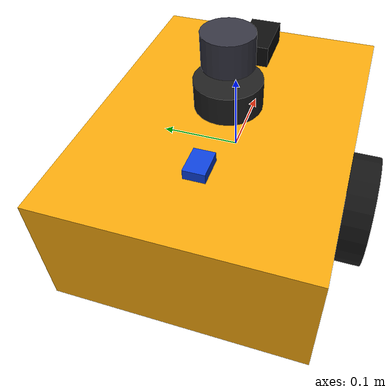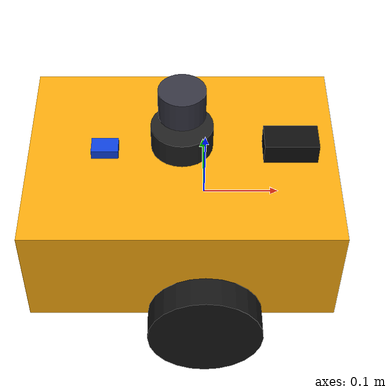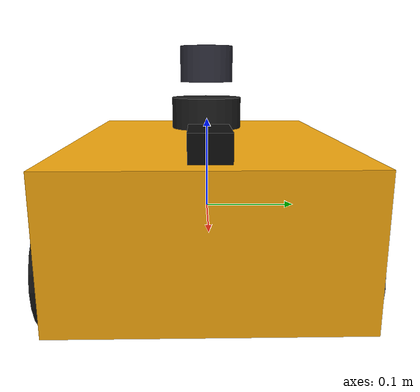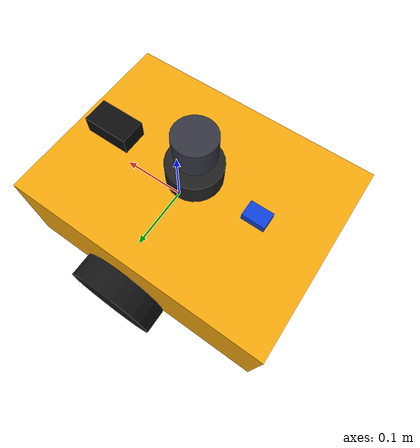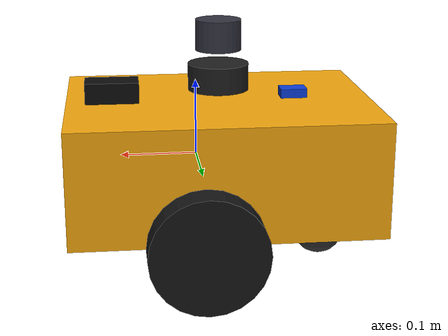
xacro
<?xml version="1.0"?>
<robot name="construction_rover" xmlns:xacro="http://www.ros.org/wiki/xacro">

  <xacro:property name="base_length" value="0.40"/>
  <xacro:property name="base_width"  value="0.30"/>
  <xacro:property name="base_height" value="0.15"/>
  <xacro:property name="base_mass"   value="5.0"/>
  <xacro:property name="wheel_radius" value="0.075"/>
  <xacro:property name="wheel_width"  value="0.04"/>
  <xacro:property name="wheel_mass"   value="0.5"/>
  <xacro:property name="wheel_y"      value="${base_width/2 + wheel_width/2}"/>
  <xacro:property name="wheel_z"      value="-0.075"/>
  <xacro:property name="caster_radius" value="0.035"/>
  <xacro:property name="caster_mass"   value="0.15"/>
  <xacro:property name="ground_z"      value="${wheel_z - wheel_radius}"/>
  <xacro:property name="caster_z"      value="${ground_z + caster_radius}"/>

  <xacro:property name="chassis_x"     value="-0.03"/>
  <xacro:property name="caster_x"      value="${chassis_x - 0.14}"/>

  <link name="base_link">
    <visual>
      <origin xyz="${chassis_x} 0 0" rpy="0 0 0"/>
      <geometry><box size="${base_length} ${base_width} ${base_height}"/></geometry>
      <material name="safety_yellow"><color rgba="0.95 0.65 0.05 1.0"/></material>
    </visual>
    <collision>
      <origin xyz="${chassis_x} 0 0" rpy="0 0 0"/>
      <geometry><box size="${base_length} ${base_width} ${base_height}"/></geometry>
    </collision>
    <inertial>
      <origin xyz="${chassis_x} 0 0" rpy="0 0 0"/>
      <mass value="${base_mass}"/>
      <inertia ixx="${base_mass/12*(base_width**2 + base_height**2)}" ixy="0" ixz="0"
               iyy="${base_mass/12*(base_length**2 + base_height**2)}" iyz="0"
               izz="${base_mass/12*(base_length**2 + base_width**2)}"/>
    </inertial>
  </link>

  <xacro:macro name="wheel" params="side y_position">
    <link name="${side}_wheel_link">
      <visual>
        <origin xyz="0 0 0" rpy="${pi/2} 0 0"/>
        <geometry><cylinder radius="${wheel_radius}" length="${wheel_width}"/></geometry>
        <material name="rubber_black"><color rgba="0.08 0.08 0.08 1.0"/></material>
      </visual>
      <collision>
        <origin xyz="0 0 0" rpy="${pi/2} 0 0"/>
        <geometry><cylinder radius="${wheel_radius}" length="${wheel_width}"/></geometry>
      </collision>
      <inertial>
        <origin xyz="0 0 0" rpy="0 0 0"/>
        <mass value="${wheel_mass}"/>
        <inertia ixx="${wheel_mass/12*(3*wheel_radius**2 + wheel_width**2)}" ixy="0" ixz="0"
                 iyy="${0.5*wheel_mass*wheel_radius**2}" iyz="0"
                 izz="${wheel_mass/12*(3*wheel_radius**2 + wheel_width**2)}"/>
      </inertial>
    </link>

    <joint name="${side}_wheel_joint" type="continuous">
      <parent link="base_link"/>
      <child link="${side}_wheel_link"/>
      <origin xyz="0 ${y_position} ${wheel_z}" rpy="0 0 0"/>
      <axis xyz="0 1 0"/>
    </joint>
    <gazebo reference="${side}_wheel_link">
      <mu1>1.0</mu1>
      <mu2>1.0</mu2>
    </gazebo>
  </xacro:macro>
  <xacro:wheel side="left"  y_position="${wheel_y}"/>
  <xacro:wheel side="right" y_position="${-wheel_y}"/>

  <link name="rear_caster_link">
    <visual>
      <geometry><sphere radius="${caster_radius}"/></geometry>
      <material name="caster_dark_gray"><color rgba="0.18 0.18 0.18 1.0"/></material>
    </visual>
    <visual>
  <origin xyz="0 0 ${(-base_height/2 - caster_z)/2}" rpy="0 0 0"/>
  <geometry>
    <cylinder radius="0.012" length="${-base_height/2 - caster_z}"/>
  </geometry>
  <material name="caster_dark_gray"/>
</visual>
    <collision>
      <geometry><sphere radius="${caster_radius}"/></geometry>
    </collision>
    <inertial>
      <mass value="${caster_mass}"/>
      <inertia ixx="${0.4*caster_mass*caster_radius**2}" ixy="0" ixz="0"
               iyy="${0.4*caster_mass*caster_radius**2}" iyz="0"
               izz="${0.4*caster_mass*caster_radius**2}"/>
    </inertial>
  </link>
  <joint name="rear_caster_joint" type="fixed">
    <parent link="base_link"/>
    <child link="rear_caster_link"/>
    <origin xyz="${caster_x} 0 ${caster_z}" rpy="0 0 0"/>
  </joint>

  <gazebo reference="rear_caster_link">
    <mu1>0.0</mu1>
    <mu2>0.0</mu2>
  </gazebo>

  <link name="lidar_link">
    <visual>
      <geometry><cylinder radius="0.04" length="0.035"/></geometry>
      <material name="lidar_dark_gray"><color rgba="0.12 0.12 0.12 1.0"/></material>
    </visual>
    <collision>
      <geometry><cylinder radius="0.04" length="0.035"/></geometry>
    </collision>
    <inertial>
      <mass value="0.2"/>
      <inertia ixx="0.0001" ixy="0" ixz="0" iyy="0.0001" iyz="0" izz="0.00016"/>
    </inertial>
  </link>
  <joint name="lidar_joint" type="fixed">
    <parent link="base_link"/>
    <child link="lidar_link"/>
    <origin xyz="${chassis_x} 0 0.105" rpy="0 0 0"/>
  </joint>
  <gazebo reference="lidar_link">
    <sensor name="lidar_sensor" type="ray">
      <pose>0 0 0 0 0 0</pose>
      <always_on>true</always_on>
      <update_rate>10</update_rate>
      <visualize>true</visualize>
      <ray>
        <scan>
          <horizontal>
            <samples>360</samples>
            <resolution>1</resolution>
            <min_angle>-3.14159</min_angle>
            <max_angle>3.14159</max_angle>
          </horizontal>
          <vertical>
            <samples>1</samples>
            <resolution>1</resolution>
            <min_angle>0</min_angle>
            <max_angle>0</max_angle>
          </vertical>
        </scan>
        <range>
          <min>0.12</min>
          <max>8.0</max>
          <resolution>0.01</resolution>
        </range>
      </ray>
      <plugin name="lidar_ros" filename="libgazebo_ros_ray_sensor.so">
        <ros><remapping>~/out:=scan</remapping></ros>
        <output_type>sensor_msgs/LaserScan</output_type>
        <frame_name>lidar_link</frame_name>
      </plugin>
    </sensor>
  </gazebo>

  <link name="camera_link">
    <visual>
      <geometry><box size="0.07 0.04 0.035"/></geometry>
      <material name="camera_black"><color rgba="0.05 0.05 0.05 1.0"/></material>
    </visual>
    <collision>
      <geometry><box size="0.07 0.04 0.035"/></geometry>
    </collision>
    <inertial>
      <mass value="0.1"/>
      <inertia ixx="0.00003" ixy="0" ixz="0" iyy="0.00005" iyz="0" izz="0.00005"/>
    </inertial>
  </link>
  <joint name="camera_joint" type="fixed">
    <parent link="base_link"/>
    <child link="camera_link"/>
    <origin xyz="${chassis_x + 0.14} 0 0.085" rpy="0 0 0"/>
  </joint>

  <link name="imu_link">
    <visual>
      <geometry><box size="0.035 0.025 0.012"/></geometry>
      <material name="imu_blue"><color rgba="0.05 0.25 0.85 1.0"/></material>
    </visual>
    <collision>
      <geometry><box size="0.035 0.025 0.012"/></geometry>
    </collision>
    <inertial>
      <mass value="0.03"/>
      <inertia ixx="0.000002" ixy="0" ixz="0" iyy="0.000003" iyz="0" izz="0.000003"/>
    </inertial>
  </link>
  <joint name="imu_joint" type="fixed">
    <parent link="base_link"/>
    <child link="imu_link"/>
    <origin xyz="${chassis_x - 0.10} 0 0.081" rpy="0 0 0"/>
  </joint>

  <link name="lidar3d_link">
    <visual>
      <geometry><cylinder radius="0.03" length="0.04"/></geometry>
      <material name="lidar3d_gray"><color rgba="0.2 0.2 0.25 1.0"/></material>
    </visual>
    <inertial>
      <mass value="0.15"/>
      <inertia ixx="0.0001" ixy="0" ixz="0" iyy="0.0001" iyz="0" izz="0.0001"/>
    </inertial>
  </link>
  <joint name="lidar3d_joint" type="fixed">
    <parent link="base_link"/>
    <child link="lidar3d_link"/>
    <origin xyz="${chassis_x} 0 0.16" rpy="0 0 0"/>
  </joint>
  <gazebo reference="lidar3d_link">
    <sensor name="lidar3d_sensor" type="ray">
      <pose>0 0 0 0 0 0</pose>
      <always_on>true</always_on>
      <update_rate>10</update_rate>
      <visualize>false</visualize>
      <ray>
        <scan>
          <horizontal>
            <samples>360</samples>
            <resolution>1</resolution>
            <min_angle>-3.14159</min_angle>
            <max_angle>3.14159</max_angle>
          </horizontal>
          <vertical>
            <samples>16</samples>
            <resolution>1</resolution>
            <min_angle>-0.35</min_angle>
            <max_angle>0.20</max_angle>
          </vertical>
        </scan>
        <range>
          <min>0.15</min>
          <max>8.0</max>
          <resolution>0.01</resolution>
        </range>
        <noise>
          <type>gaussian</type>
          <mean>0.0</mean>
          <stddev>0.005</stddev>
        </noise>
      </ray>
      <plugin name="lidar3d_ros" filename="libgazebo_ros_ray_sensor.so">
        <ros><remapping>~/out:=points</remapping></ros>
        <output_type>sensor_msgs/PointCloud2</output_type>
        <frame_name>lidar3d_link</frame_name>
      </plugin>
    </sensor>
  </gazebo>

  <gazebo reference="imu_link">
    <gravity>true</gravity>
    <sensor name="imu_sensor" type="imu">
      <always_on>true</always_on>
      <update_rate>100</update_rate>
      <visualize>false</visualize>
      <imu>
        <angular_velocity>
          <x><noise type="gaussian"><mean>0.0</mean><stddev>0.0002</stddev></noise></x>
          <y><noise type="gaussian"><mean>0.0</mean><stddev>0.0002</stddev></noise></y>
          <z><noise type="gaussian"><mean>0.0</mean><stddev>0.0002</stddev></noise></z>
        </angular_velocity>
        <linear_acceleration>
          <x><noise type="gaussian"><mean>0.0</mean><stddev>0.017</stddev></noise></x>
          <y><noise type="gaussian"><mean>0.0</mean><stddev>0.017</stddev></noise></y>
          <z><noise type="gaussian"><mean>0.0</mean><stddev>0.017</stddev></noise></z>
        </linear_acceleration>
      </imu>
      <plugin name="imu_ros" filename="libgazebo_ros_imu_sensor.so">
        <ros><remapping>~/out:=imu/data</remapping></ros>
        <initial_orientation_as_reference>false</initial_orientation_as_reference>
        <frame_name>imu_link</frame_name>
      </plugin>
    </sensor>
  </gazebo>

  <ros2_control name="GazeboSystem" type="system">
    <hardware>
      <plugin>gazebo_ros2_control/GazeboSystem</plugin>
    </hardware>
    <joint name="left_wheel_joint">
      <command_interface name="velocity">
        <param name="min">-10</param>
        <param name="max">10</param>
      </command_interface>
      <state_interface name="position"/>
      <state_interface name="velocity"/>
    </joint>
    <joint name="right_wheel_joint">
      <command_interface name="velocity">
        <param name="min">-10</param>
        <param name="max">10</param>
      </command_interface>
      <state_interface name="position"/>
      <state_interface name="velocity"/>
    </joint>
  </ros2_control>
  <gazebo>
    <plugin filename="libgazebo_ros2_control.so" name="gazebo_ros2_control">
      <parameters>$(find rover_description)/config/controllers.yaml</parameters>
    </plugin>
  </gazebo>
  <gazebo>
  <plugin name="gazebo_ros_p3d" filename="libgazebo_ros_p3d.so">
    <ros>
      <remapping>odom:=ground_truth/odom</remapping>
    </ros>
    <frame_name>world</frame_name>
    <body_name>base_link</body_name>
    <update_rate>30.0</update_rate>
  </plugin>
</gazebo>
</robot>
